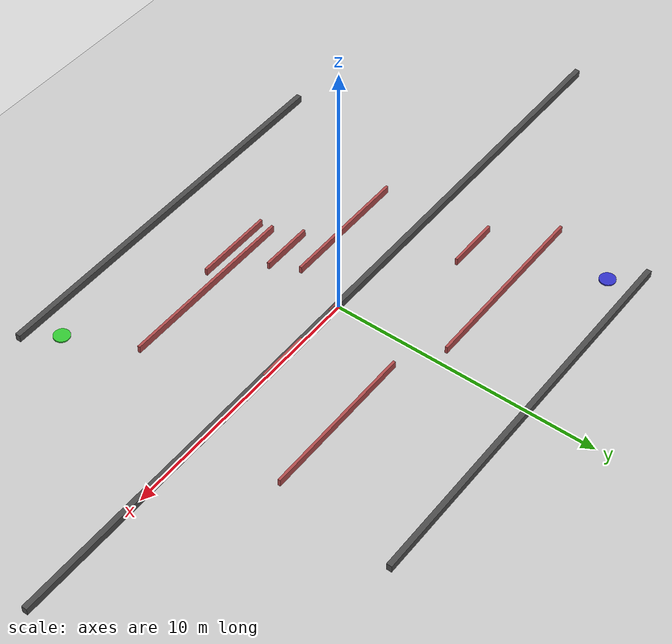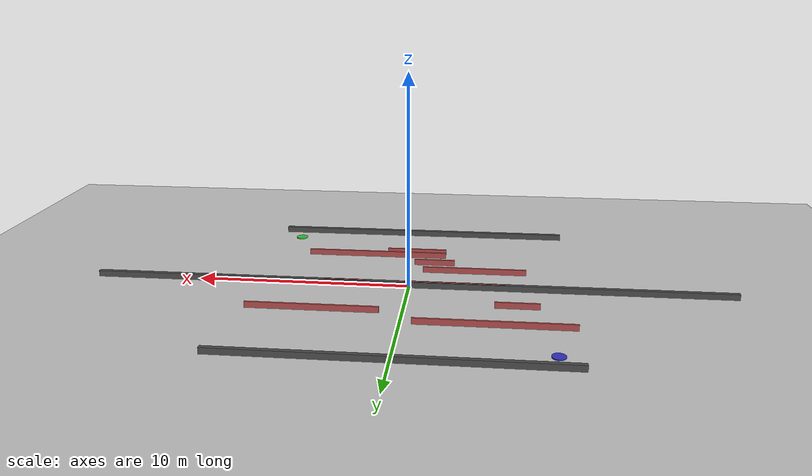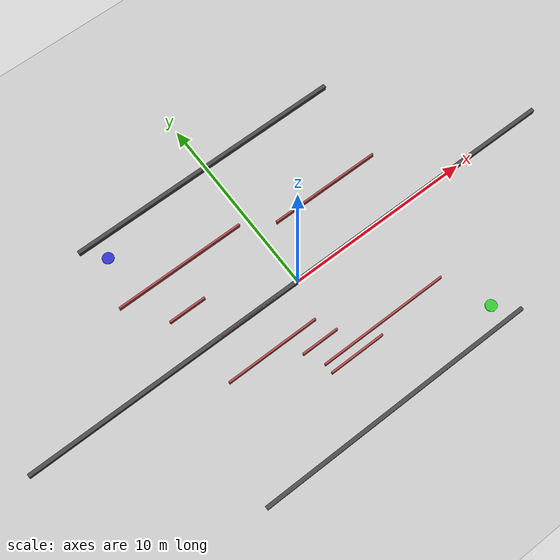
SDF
<?xml version="1.0" ?>
<sdf version="1.6">
  <world name="maze">
    <physics type="ode">
      <max_step_size>0.001</max_step_size>
      <real_time_factor>1</real_time_factor>
    </physics>
    <include>
      <uri>model://sun</uri>
    </include>
    <include>
      <uri>model://ground_plane</uri>
    </include>
    <model name="wall_north">
      <pose>0 7.5 0.0 0 0 0</pose>
      <static>true</static>
      <link name="link">
        <collision name="collision">
          <geometry>
            <box>
              <size>15.0 0.2 0.5</size>
            </box>
          </geometry>
        </collision>
        <visual name="visual">
          <geometry>
            <box>
              <size>15.0 0.2 0.5</size>
            </box>
          </geometry>
          <material>
            <diffuse>0.3 0.3 0.3 1</diffuse>
          </material>
        </visual>
      </link>
    </model>
    <model name="wall_south">
      <pose>0 -7.5 0.0 0 0 0</pose>
      <static>true</static>
      <link name="link">
        <collision name="collision">
          <geometry>
            <box>
              <size>15.0 0.2 0.5</size>
            </box>
          </geometry>
        </collision>
        <visual name="visual">
          <geometry>
            <box>
              <size>15.0 0.2 0.5</size>
            </box>
          </geometry>
          <material>
            <diffuse>0.3 0.3 0.3 1</diffuse>
          </material>
        </visual>
      </link>
    </model>
    <model name="wall_east">
      <pose>7.5 0 0.0 0 0 1.57</pose>
      <static>true</static>
      <link name="link">
        <collision name="collision">
          <geometry>
            <box>
              <size>0.2 15.0 0.5</size>
            </box>
          </geometry>
        </collision>
        <visual name="visual">
          <geometry>
            <box>
              <size>0.2 15.0 0.5</size>
            </box>
          </geometry>
          <material>
            <diffuse>0.3 0.3 0.3 1</diffuse>
          </material>
        </visual>
      </link>
    </model>
    <model name="wall_west">
      <pose>-7.5 0 0.0 0 0 1.57</pose>
      <static>true</static>
      <link name="link">
        <collision name="collision">
          <geometry>
            <box>
              <size>0.2 15.0 0.5</size>
            </box>
          </geometry>
        </collision>
        <visual name="visual">
          <geometry>
            <box>
              <size>0.2 15.0 0.5</size>
            </box>
          </geometry>
          <material>
            <diffuse>0.3 0.3 0.3 1</diffuse>
          </material>
        </visual>
      </link>
    </model>
    <model name="wall_4">
      <pose>-4.0 4.0 0.0 0 0 0</pose>
      <static>true</static>
      <link name="link">
        <collision name="collision">
          <geometry>
            <box>
              <size>7.0 0.1 0.5</size>
            </box>
          </geometry>
        </collision>
        <visual name="visual">
          <geometry>
            <box>
              <size>7.0 0.1 0.5</size>
            </box>
          </geometry>
          <material>
            <diffuse>0.7 0.3 0.3 1</diffuse>
          </material>
        </visual>
      </link>
    </model>
    <model name="wall_5">
      <pose>-2.0 0.0 0.0 0 0 0</pose>
      <static>true</static>
      <link name="link">
        <collision name="collision">
          <geometry>
            <box>
              <size>5.0 0.1 0.5</size>
            </box>
          </geometry>
        </collision>
        <visual name="visual">
          <geometry>
            <box>
              <size>5.0 0.1 0.5</size>
            </box>
          </geometry>
          <material>
            <diffuse>0.7 0.3 0.3 1</diffuse>
          </material>
        </visual>
      </link>
    </model>
    <model name="wall_6">
      <pose>2.0 -4.0 0.0 0 0 0</pose>
      <static>true</static>
      <link name="link">
        <collision name="collision">
          <geometry>
            <box>
              <size>7.0 0.1 0.5</size>
            </box>
          </geometry>
        </collision>
        <visual name="visual">
          <geometry>
            <box>
              <size>7.0 0.1 0.5</size>
            </box>
          </geometry>
          <material>
            <diffuse>0.7 0.3 0.3 1</diffuse>
          </material>
        </visual>
      </link>
    </model>
    <model name="wall_7">
      <pose>4.0 3.0 0.0 0 0 1.57</pose>
      <static>true</static>
      <link name="link">
        <collision name="collision">
          <geometry>
            <box>
              <size>0.1 6.0 0.5</size>
            </box>
          </geometry>
        </collision>
        <visual name="visual">
          <geometry>
            <box>
              <size>0.1 6.0 0.5</size>
            </box>
          </geometry>
          <material>
            <diffuse>0.7 0.3 0.3 1</diffuse>
          </material>
        </visual>
      </link>
    </model>
    <model name="wall_8">
      <pose>-3.0 -2.0 0.0 0 0 1.57</pose>
      <static>true</static>
      <link name="link">
        <collision name="collision">
          <geometry>
            <box>
              <size>0.1 5.0 0.5</size>
            </box>
          </geometry>
        </collision>
        <visual name="visual">
          <geometry>
            <box>
              <size>0.1 5.0 0.5</size>
            </box>
          </geometry>
          <material>
            <diffuse>0.7 0.3 0.3 1</diffuse>
          </material>
        </visual>
      </link>
    </model>
    <model name="wall_9">
      <pose>0.0 -4.5 0.0 0 0 1.57</pose>
      <static>true</static>
      <link name="link">
        <collision name="collision">
          <geometry>
            <box>
              <size>0.1 3.0 0.5</size>
            </box>
          </geometry>
        </collision>
        <visual name="visual">
          <geometry>
            <box>
              <size>0.1 3.0 0.5</size>
            </box>
          </geometry>
          <material>
            <diffuse>0.7 0.3 0.3 1</diffuse>
          </material>
        </visual>
      </link>
    </model>
    <model name="wall_10">
      <pose>-5.0 2.0 0.0 0 0 1.57</pose>
      <static>true</static>
      <link name="link">
        <collision name="collision">
          <geometry>
            <box>
              <size>0.1 2.0 0.5</size>
            </box>
          </geometry>
        </collision>
        <visual name="visual">
          <geometry>
            <box>
              <size>0.1 2.0 0.5</size>
            </box>
          </geometry>
          <material>
            <diffuse>0.7 0.3 0.3 1</diffuse>
          </material>
        </visual>
      </link>
    </model>
    <model name="wall_11">
      <pose>3.0 0.0 0.0 0 0 1.57</pose>
      <static>true</static>
      <link name="link">
        <collision name="collision">
          <geometry>
            <box>
              <size>0.1 2.0 0.5</size>
            </box>
          </geometry>
        </collision>
        <visual name="visual">
          <geometry>
            <box>
              <size>0.1 2.0 0.5</size>
            </box>
          </geometry>
          <material>
            <diffuse>0.7 0.3 0.3 1</diffuse>
          </material>
        </visual>
      </link>
    </model>
    <model name="wall_12">
      <pose>-1.0 -3.0 0.0 0 0 1.57</pose>
      <static>true</static>
      <link name="link">
        <collision name="collision">
          <geometry>
            <box>
              <size>0.1 2.0 0.5</size>
            </box>
          </geometry>
        </collision>
        <visual name="visual">
          <geometry>
            <box>
              <size>0.1 2.0 0.5</size>
            </box>
          </geometry>
          <material>
            <diffuse>0.7 0.3 0.3 1</diffuse>
          </material>
        </visual>
      </link>
    </model>
    <model name="start">
      <pose>-6.5 6.5 0.0 0 0 0</pose>
      <static>true</static>
      <link name="link">
        <collision name="collision">
          <geometry>
            <cylinder>
              <radius>0.3</radius>
              <length>0.05</length>
            </cylinder>
          </geometry>
        </collision>
        <visual name="visual">
          <geometry>
            <cylinder>
              <radius>0.3</radius>
              <length>0.05</length>
            </cylinder>
          </geometry>
          <material>
            <diffuse>0.2 0.2 0.8 1</diffuse>
          </material>
        </visual>
      </link>
    </model>
    <model name="goal">
      <pose>6.5 -6.5 0.0 0 0 0</pose>
      <static>true</static>
      <link name="link">
        <collision name="collision">
          <geometry>
            <cylinder>
              <radius>0.3</radius>
              <length>0.05</length>
            </cylinder>
          </geometry>
        </collision>
        <visual name="visual">
          <geometry>
            <cylinder>
              <radius>0.3</radius>
              <length>0.05</length>
            </cylinder>
          </geometry>
          <material>
            <diffuse>0.2 0.8 0.2 1</diffuse>
          </material>
        </visual>
      </link>
    </model>
  </world>
</sdf>
